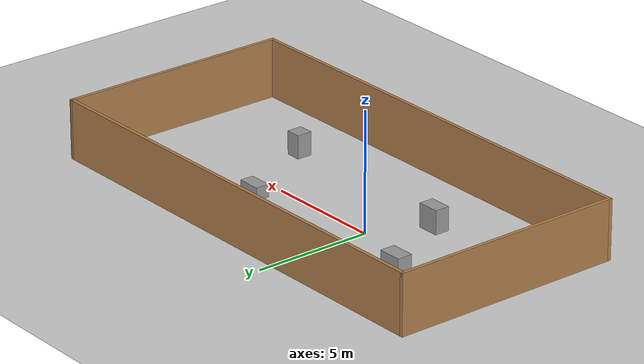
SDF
<sdf version="1.6">
 <world name="default">
  <light name="sun" type="directional">
   <pose>0 0 10 0 -0 0</pose>
   <diffuse>0.8 0.8 0.8 1</diffuse>
   <specular>0.2 0.2 0.2 1</specular>
   <attenuation>
    <range>1000</range>
    <constant>0.9</constant>
    <linear>0.01</linear>
    <quadratic>0.001</quadratic>
   </attenuation>
   <direction>-0.5 0.1 -0.9</direction>
  </light>
  <model name="ground_plane">
   <static>1</static>
   <link name="link">
    <collision name="collision">
     <geometry><plane><normal>0 0 1</normal><size>100 100</size></plane></geometry>
     <surface><friction><ode><mu>100</mu><mu2>50</mu2></ode></friction></surface>
    </collision>
    <visual name="visual">
     <cast_shadows>0</cast_shadows>
     <geometry><plane><normal>0 0 1</normal><size>100 100</size></plane></geometry>
     <material>
      <script><uri>file://media/materials/scripts/gazebo.material</uri><name>Gazebo/Grey</name></script>
     </material>
    </visual>
   </link>
  </model>
  <gravity>0 0 -9.8</gravity>
  <magnetic_field>6e-06 2.3e-05 -4.2e-05</magnetic_field>
  <atmosphere type="adiabatic"/>
  <physics name="default_physics" default="0" type="ode">
   <max_step_size>0.001</max_step_size>
   <real_time_factor>1</real_time_factor>
   <real_time_update_rate>1000</real_time_update_rate>
  </physics>
  <scene><ambient>0.4 0.4 0.4 1</ambient><background>0.7 0.7 0.7 1</background><shadows>1</shadows></scene>
  <audio><device>default</device></audio>
  <spherical_coordinates>
   <surface_model>EARTH_WGS84</surface_model>
   <latitude_deg>0</latitude_deg>
   <longitude_deg>0</longitude_deg>
   <elevation>0</elevation>
   <heading_deg>0</heading_deg>
  </spherical_coordinates>
  <model name="wall">
   <pose>2.53239 -0.53538 0 0 -0 0</pose>
   <link name="Wall_33">
    <collision name="Wall_33_Collision">
     <geometry><box><size>20 0.15 2.5</size></box></geometry>
     <pose>0 0 1.25 0 -0 0</pose>
    </collision>
    <visual name="Wall_33_Visual">
     <pose>0 0 1.25 0 -0 0</pose>
     <geometry><box><size>20 0.15 2.5</size></box></geometry>
     <material>
      <script><uri>file://media/materials/scripts/gazebo.material</uri><name>Gazebo/Wood</name></script>
      <ambient>1 1 1 1</ambient>
     </material>
     <meta><layer>0</layer></meta>
    </visual>
    <pose>-0 4.925 0 0 -0 0</pose>
   </link>
   <link name="Wall_34">
    <collision name="Wall_34_Collision">
     <geometry><box><size>10 0.15 2.5</size></box></geometry>
     <pose>0 0 1.25 0 -0 0</pose>
    </collision>
    <visual name="Wall_34_Visual">
     <pose>0 0 1.25 0 -0 0</pose>
     <geometry><box><size>10 0.15 2.5</size></box></geometry>
     <material>
      <script><uri>file://media/materials/scripts/gazebo.material</uri><name>Gazebo/Wood</name></script>
      <ambient>1 1 1 1</ambient>
     </material>
     <meta><layer>0</layer></meta>
    </visual>
    <pose>9.925 0 0 0 -0 -1.5708</pose>
   </link>
   <link name="Wall_35">
    <collision name="Wall_35_Collision">
     <geometry><box><size>20 0.15 2.5</size></box></geometry>
     <pose>0 0 1.25 0 -0 0</pose>
    </collision>
    <visual name="Wall_35_Visual">
     <pose>0 0 1.25 0 -0 0</pose>
     <geometry><box><size>20 0.15 2.5</size></box></geometry>
     <material>
      <script><uri>file://media/materials/scripts/gazebo.material</uri><name>Gazebo/Wood</name></script>
      <ambient>1 1 1 1</ambient>
     </material>
     <meta><layer>0</layer></meta>
    </visual>
    <pose>-0 -4.925 0 0 -0 3.14159</pose>
   </link>
   <link name="Wall_36">
    <collision name="Wall_36_Collision">
     <geometry><box><size>10 0.15 2.5</size></box></geometry>
     <pose>0 0 1.25 0 -0 0</pose>
    </collision>
    <visual name="Wall_36_Visual">
     <pose>0 0 1.25 0 -0 0</pose>
     <geometry><box><size>10 0.15 2.5</size></box></geometry>
     <material>
      <script><uri>file://media/materials/scripts/gazebo.material</uri><name>Gazebo/Wood</name></script>
      <ambient>1 1 1 1</ambient>
     </material>
     <meta><layer>0</layer></meta>
    </visual>
    <pose>-9.925 0 0 0 -0 1.5708</pose>
   </link>
   <static>1</static>
  </model>
  <model name="unit_box">
   <pose>-1.29828 -2.28288 0.499994 5e-06 9e-06 1.8e-05</pose>
   <link name="link">
    <inertial>
     <mass>1</mass>
     <inertia>
      <ixx>0.166667</ixx>
      <ixy>0</ixy>
      <ixz>0</ixz>
      <iyy>0.166667</iyy>
      <iyz>0</iyz>
      <izz>0.166667</izz>
     </inertia>
    </inertial>
    <collision name="collision"><geometry><box><size>0.936734 0.62653 1</size></box></geometry></collision>
    <visual name="visual">
     <geometry><box><size>0.936734 0.62653 1</size></box></geometry>
     <material>
      <script><name>Gazebo/Grey</name><uri>file://media/materials/scripts/gazebo.material</uri></script>
     </material>
    </visual>
   </link>
  </model>
  <model name="unit_box_0">
   <pose>-3.56345 1.47643 0.5 0 -0 0</pose>
   <link name="link">
    <inertial>
     <mass>1</mass>
     <inertia>
      <ixx>0.166667</ixx>
      <ixy>0</ixy>
      <ixz>0</ixz>
      <iyy>0.166667</iyy>
      <iyz>0</iyz>
      <izz>0.166667</izz>
     </inertia>
    </inertial>
    <collision name="collision"><geometry><box><size>1 0.641166 1</size></box></geometry></collision>
    <visual name="visual">
     <geometry><box><size>1 0.641166 1</size></box></geometry>
     <material>
      <script><name>Gazebo/Grey</name><uri>file://media/materials/scripts/gazebo.material</uri></script>
     </material>
    </visual>
   </link>
  </model>
  <model name="unit_box_1">
   <pose>7.21541 -2.65452 0.5 0 -0 0</pose>
   <link name="link">
    <inertial>
     <mass>1</mass>
     <inertia>
      <ixx>0.166667</ixx>
      <ixy>0</ixy>
      <ixz>0</ixz>
      <iyy>0.166667</iyy>
      <iyz>0</iyz>
      <izz>0.166667</izz>
     </inertia>
    </inertial>
    <collision name="collision"><geometry><box><size>0.650301 0.642315 1</size></box></geometry></collision>
    <visual name="visual">
     <geometry><box><size>0.650301 0.642315 1</size></box></geometry>
     <material>
      <script><name>Gazebo/Grey</name><uri>file://media/materials/scripts/gazebo.material</uri></script>
     </material>
    </visual>
   </link>
  </model>
  <model name="unit_box_2">
   <pose>5.32213 1.05496 0.277462 0 -0 0</pose>
   <link name="link">
    <inertial>
     <mass>1</mass>
     <inertia>
      <ixx>0.166667</ixx>
      <ixy>0</ixy>
      <ixz>0</ixz>
      <iyy>0.166667</iyy>
      <iyz>0</iyz>
      <izz>0.166667</izz>
     </inertia>
    </inertial>
    <collision name="collision">
     <geometry><box><size>0.978077 0.580615 0.554925</size></box></geometry>
    </collision>
    <visual name="visual">
     <geometry><box><size>0.978077 0.580615 0.554925</size></box></geometry>
     <material>
      <script><name>Gazebo/Grey</name><uri>file://media/materials/scripts/gazebo.material</uri></script>
     </material>
    </visual>
   </link>
  </model>
 </world>
</sdf>
